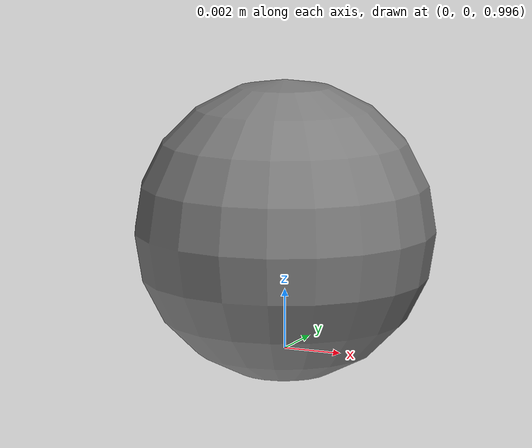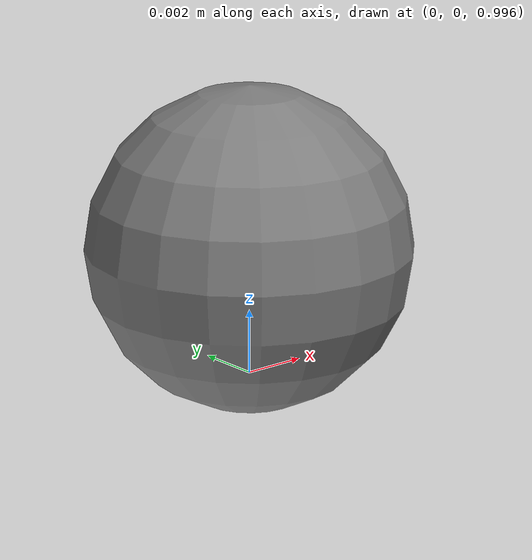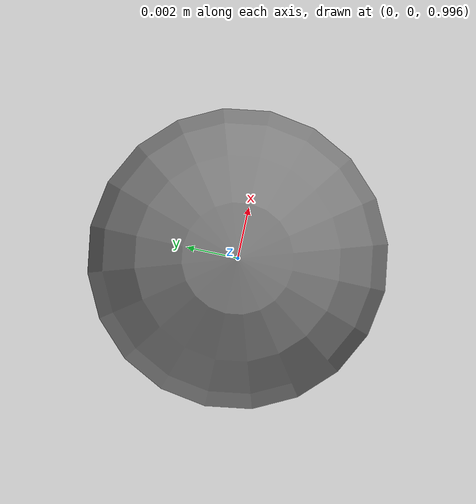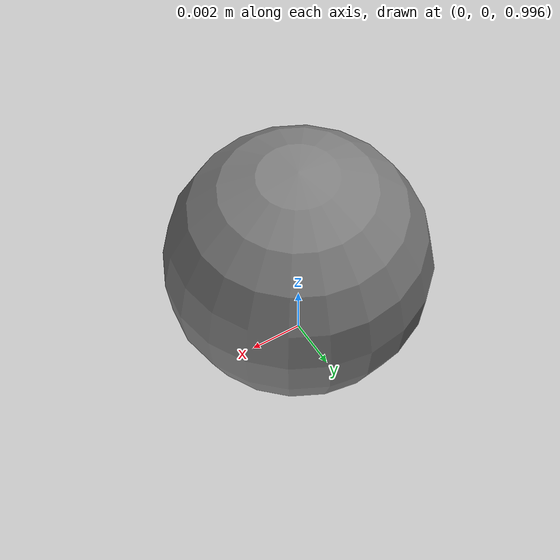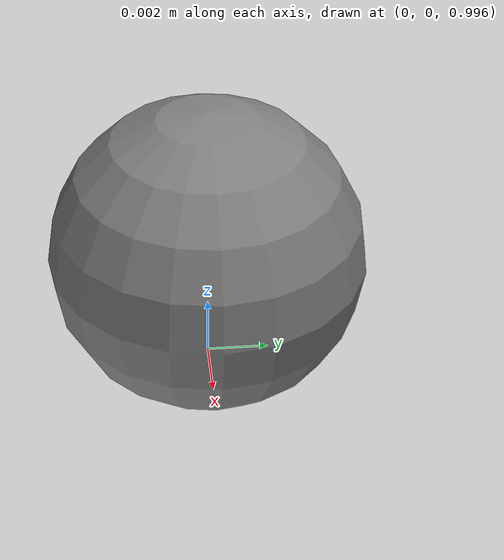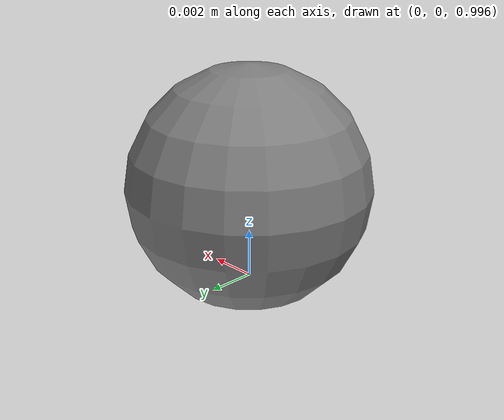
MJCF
<!-- Differential sensor scenario: a mocap site reads a fixed plane. -->
<mujoco model="mocap_rangefinder">
  <compiler angle="radian"/>
  <option timestep="0.005" gravity="0 0 -9.81" magnetic="0 -0.5 0"
          integrator="RK4" solver="PGS" cone="pyramidal" iterations="20"/>
  <worldbody>
    <geom name="ceiling" type="box" pos="0 0 2" size="3 3 0.1"/>
    <body name="probe" mocap="true" pos="0 0 1">
      <inertial pos="0 0 0" mass="1" diaginertia="1 1 1"/>
      <site name="probe_site" pos="0 0 0"/>
    </body>
  </worldbody>
  <sensor>
    <rangefinder name="probe_range" site="probe_site"/>
    <velocimeter name="probe_velocity" site="probe_site"/>
    <magnetometer name="probe_magnetic" site="probe_site"/>
  </sensor>
</mujoco>
